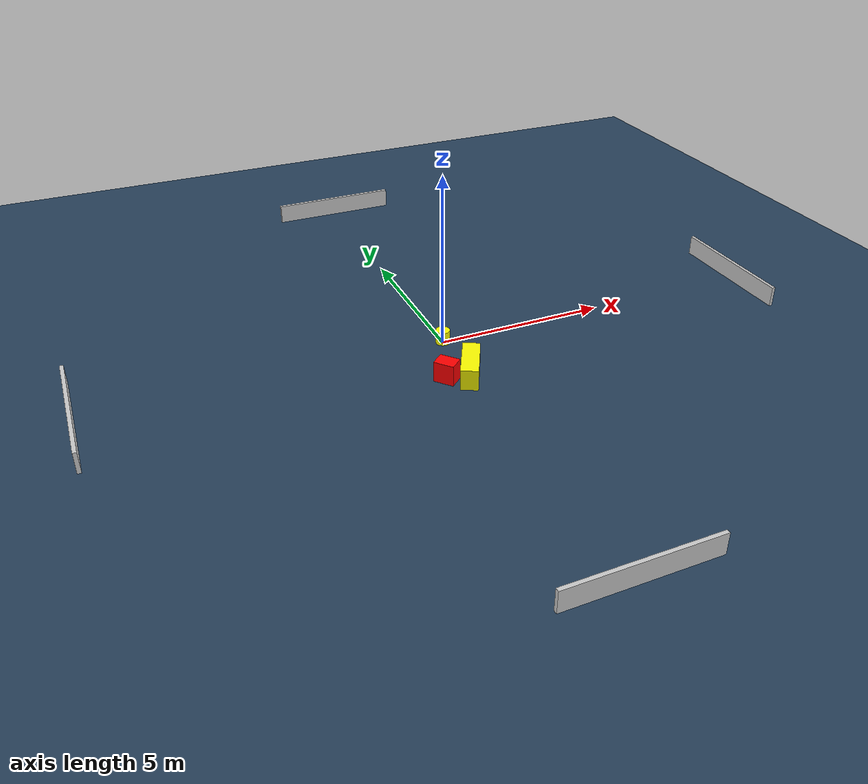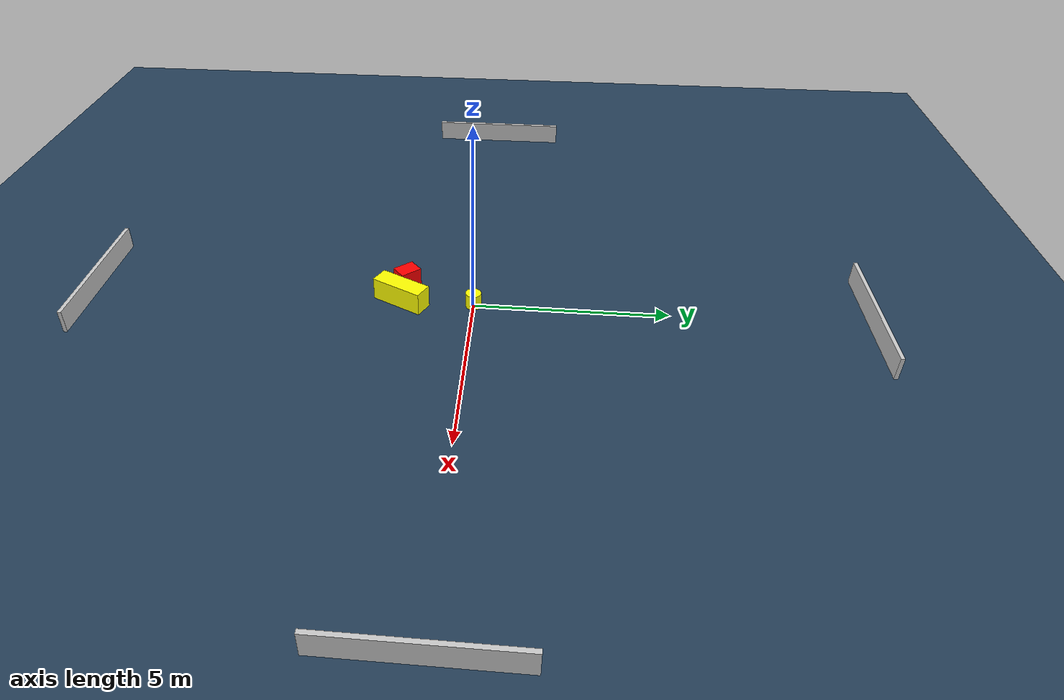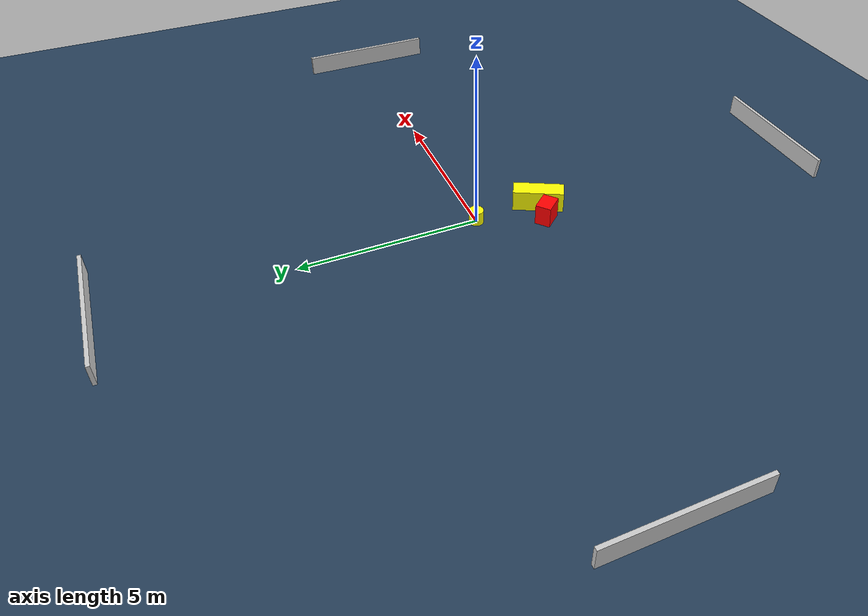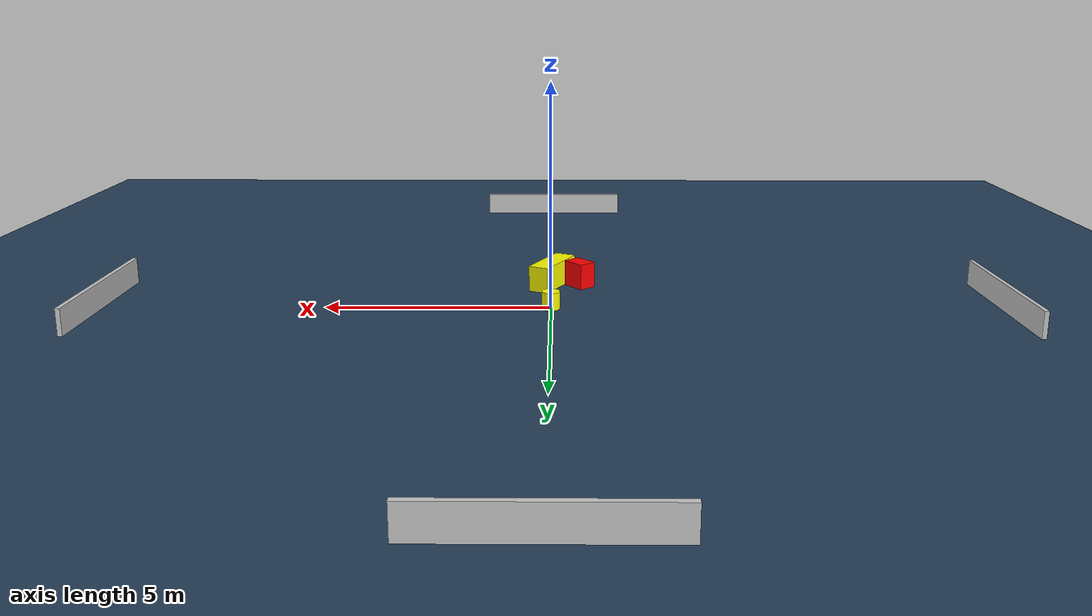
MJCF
<?xml version="1.0" ?>
<mujoco model="generated_environment">
  <option timestep="0.01" integrator="RK4" cone="elliptic"/>
  <default>
    <geom density="1"/>
  </default>
  <asset>
    <texture builtin="gradient" height="3072" name="skybox" rgb1="0.3 0.5 0.7" rgb2="0 0 0" type="skybox" width="512"/>
    <texture builtin="checker" height="300" name="groundplane" rgb1="0.2 0.3 0.4" rgb2="0.1 0.2 0.3" type="2d" width="300"/>
    <material name="groundplane" reflectance="0.2" texrepeat="5 5" texture="groundplane"/>
  </asset>
  <worldbody>
    <light dir="0 0 -1" directional="true" pos="0 0 1.5"/>
    <geom condim="3" friction="0.5 0.005 0.001" material="groundplane" name="floor" pos="0 0 0" size="0 0 0.05" type="plane"/>
    <body name="walls">
      <geom name="wall_1" condim="4" pos="-10.0 0.0 0.3" rgba="0.800000011920929 0.800000011920929 0.800000011920929 1.0" size="0.05 2.0 0.3" type="box"/>
      <geom name="wall_2" condim="4" pos="10.0 0.0 0.3" rgba="0.800000011920929 0.800000011920929 0.800000011920929 1.0" size="0.05 2.0 0.3" type="box"/>
      <geom name="wall_3" condim="4" pos="0.0 -10.0 0.3" rgba="0.800000011920929 0.800000011920929 0.800000011920929 1.0" size="2.0 0.05 0.3" type="box"/>
      <geom name="wall_4" condim="4" pos="0.0 10.0 0.3" rgba="0.800000011920929 0.800000011920929 0.800000011920929 1.0" size="2.0 0.05 0.3" type="box"/>
    </body>
    <body name="robot">
      <joint name="joint_x" type="slide" pos="0 0 0" axis="1 0 0"/>
      <joint name="joint_y" type="slide" pos="0 0 0" axis="0 1 0"/>
      <geom name="robot" type="cylinder" pos="0.0 0.0 0.2" size="0.2 0.2 0.0" mass="5.0" friction="1.0 0.005 0.0001" condim="4" rgba="1.0 1.0 0.0 1.0"/>
    </body>
    <body name="obstacle_1_movable">
      <geom name="obstacle_1_movable" condim="4" pos="-0.013495363840305094 -1.873922920992697 0.3" euler="0 0 242.91498653165718" friction="0.0 0.005 0.001" rgba="1.0 1.0 0.0 1.0" size="0.7031022880839992 0.24262062807570922 0.3" type="box" mass="0.1"/>
      <joint type="free"/>
    </body>
    <body name="obstacle_2_static">
      <geom name="obstacle_2_static" condim="4" pos="-0.6677401648437684 -1.8072896407475352 0.3" euler="0 0 220.8824453659043" friction="0.0 0.005 0.001" rgba="1.0 0.0 0.0 1.0" size="0.2167483982059852 0.2882419275165416 0.3" type="box"/>
    </body>
  </worldbody>
  <actuator>
    <motor name="actuator_x" joint="joint_x" gear="1" ctrlrange="-1 1"/>
    <motor name="actuator_y" joint="joint_y" gear="1" ctrlrange="-1 1"/>
  </actuator>
</mujoco>
